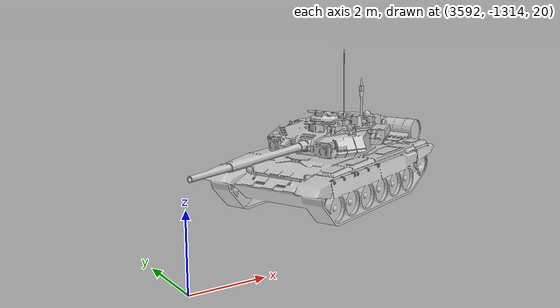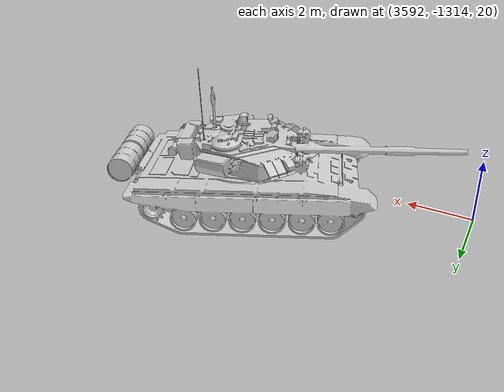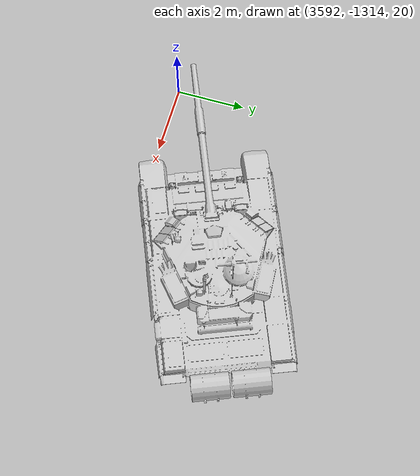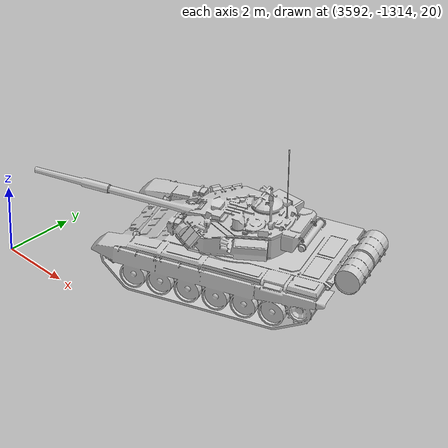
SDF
<sdf version="1.7">
 <world name="default">
  <light name="sun" type="directional">
   <pose>0 0 10 0 -0 0</pose>
   <diffuse>0.8 0.8 0.8 1</diffuse>
   <specular>0.2 0.2 0.2 1</specular>
   <attenuation>
    <range>50000</range>
    <constant>0.9</constant>
    <linear>0.01</linear>
    <quadratic>0.001</quadratic>
   </attenuation>
   <direction>-0.5 0.1 -0.9</direction>
   <spot><inner_angle>0</inner_angle><outer_angle>0</outer_angle><falloff>0</falloff></spot>
  </light>
  <gravity>0 0 -9.8</gravity>
  <magnetic_field>6e-06 2.3e-05 -4.2e-05</magnetic_field>
  <atmosphere type="adiabatic"/>
  <physics type="ode">
   <max_step_size>0.001</max_step_size>
   <real_time_update_rate>1000</real_time_update_rate>
   <real_time_factor>1</real_time_factor>
  </physics>
  <scene><ambient>0.4 0.4 0.4 1</ambient><background>0.7 0.7 0.7 1</background><shadows>0</shadows></scene>
  <spherical_coordinates>
   <surface_model>EARTH_WGS84</surface_model>
   <latitude_deg>0</latitude_deg>
   <longitude_deg>0</longitude_deg>
   <elevation>0</elevation>
   <heading_deg>0</heading_deg>
  </spherical_coordinates>
  <model name="Terrain Test">
   <static>1</static>
   <link name="link">
    <visual name="visual">
     <geometry><mesh><uri>model://fast_model/meshes/test1.dae</uri></mesh></geometry>
     <material>
      <script>
       <uri>model://fast_model/materials/scripts</uri>
       <uri>model://fast_model/materials/textures</uri>
       <name>TerrainTest/Test</name>
      </script>
     </material>
    </visual>
   </link>
  </model>
  <model name="tank">
   <static>1</static>
   <link name="base_link">
    <visual name="visual">
     <pose>0 0 0 0 0 -1.5708</pose>
     <geometry><mesh><uri>model://fast_model/meshes/T90.dae</uri></mesh></geometry>
     <material>
      <script>
       <uri>model://fast_model/materials/scripts</uri>
       <uri>model://fast_model/materials/textures</uri>
       <name>T90</name>
      </script>
     </material>
    </visual>
   </link>
   <pose>3596.75 -1311.36 20.5225 -0.016744 0.02535 0.360054</pose>
  </model>
 </world>
</sdf>
